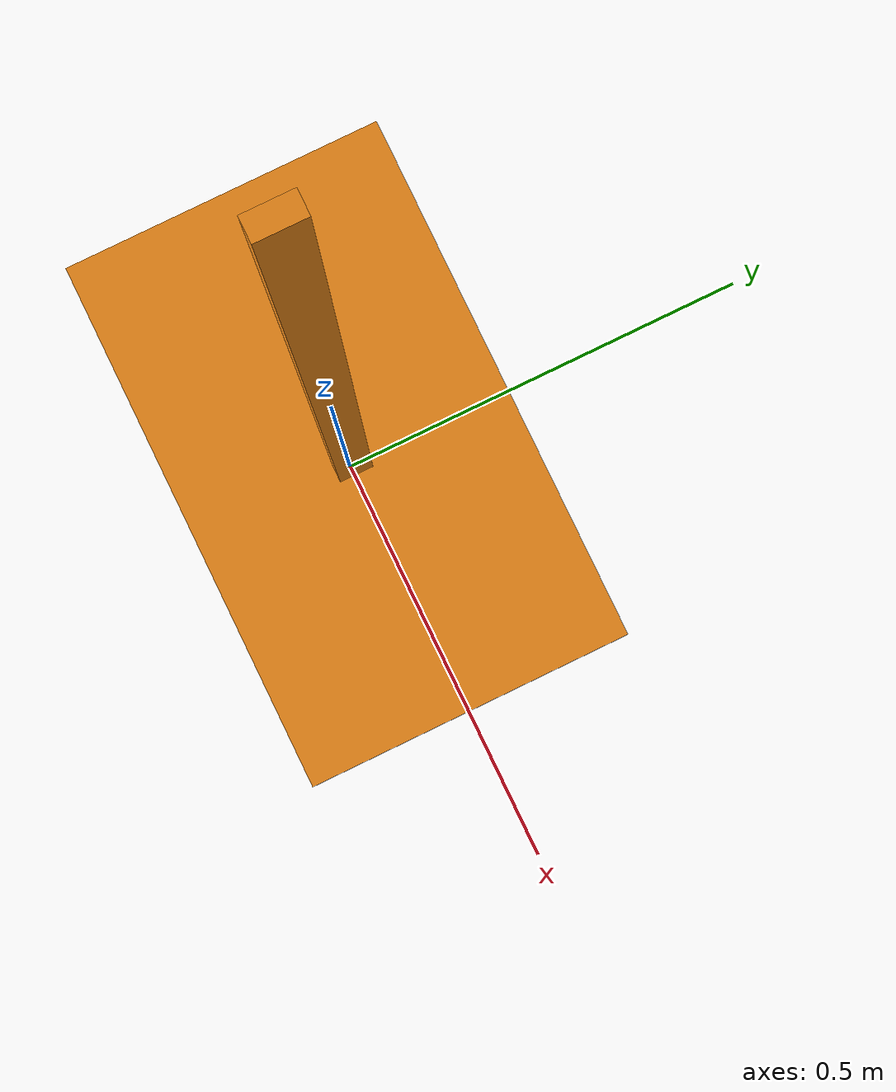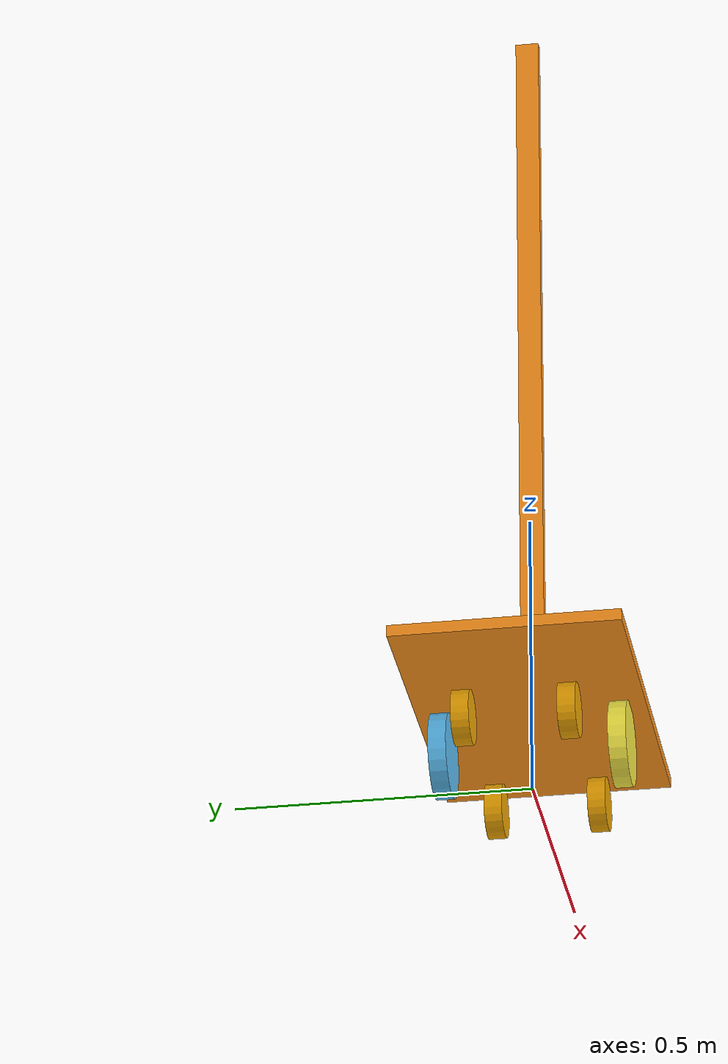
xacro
<?xml version="1.0"?>
<!-- Revolute-Revolute Manipulator -->
<robot name="interaction_robot" xmlns:xacro="http://www.ros.org/wiki/xacro">
  <!-- Constants for robot dimensions -->
  <xacro:property name="PI" value="3.1415926535897931"/>

  <!-- Import Rviz colors -->
  <xacro:include filename="$(find icart_mini_description)/urdf/materials.xacro" />
  <xacro:include filename="$(find orne_description)/urdf/interaction_robot.gazebo"/>

  <!-- Base Link -->
  <link name="base_link">
    <collision>
      <origin xyz="0 0 0.15" rpy="0 0 0"/>
      <geometry>
	<box size=".645 .385 .02"/>
      </geometry>
    </collision>

    <visual>
      <origin xyz="0 0 0.15" rpy="0 0 0"/>
      <geometry>
	<box size=".64 .385 .02"/>
      </geometry>
      <material name="orange"/>
    </visual>

    <collision>
      <origin xyz="0.02 0 0.81" rpy="0 0 0"/>
      <geometry>
  <box size=".020 .040 1.30"/>
      </geometry>
    </collision>

    <visual>
      <origin xyz="0.02 0 0.81" rpy="0 0 0"/>
      <geometry>
  <box size=".020 .040 1.30"/>
      </geometry>
      <material name="orange"/>
    </visual>

    <collision name="collision">
      <origin xyz="-0.185 -0.0875 0.05" rpy="0 1.5707 1.5707"/>
      <geometry>
        <cylinder  length="0.03" radius="0.04625"/>
      </geometry>
    </collision>
    <visual name="visual">
      <origin xyz="-0.185 -0.0875 0.05" rpy="0 1.5707 1.5707"/>
      <geometry>
        <cylinder  length="0.03" radius="0.04625"/>
      </geometry>
    </visual>

    <collision name="collision">
      <origin xyz="-0.185 0.0875 0.05" rpy="0 1.5707 1.5707"/>
      <geometry>
        <cylinder  length="0.03" radius="0.04625"/>
      </geometry>
    </collision>
    <visual name="visual">
      <origin xyz="-0.185 0.0875 0.05" rpy="0 1.5707 1.5707"/>
      <geometry>
        <cylinder  length="0.03" radius="0.04625"/>
      </geometry>
    </visual>

    <collision name="collision">
      <origin xyz="0.18 -0.0875 0.05" rpy="0 1.5707 1.5707"/>
      <geometry>
        <cylinder  length="0.03" radius="0.04625"/>
      </geometry>
    </collision>
    <visual name="visual">
      <origin xyz="0.18 -0.0875 0.05" rpy="0 1.5707 1.5707"/>
      <geometry>
        <cylinder  length="0.03" radius="0.04625"/>
      </geometry>
    </visual>

    <collision name="collision">
      <origin xyz="0.18 0.0875 0.05" rpy="0 1.5707 1.5707"/>
      <geometry>
        <cylinder  length="0.03" radius="0.04625"/>
      </geometry>
    </collision>
    <visual name="visual">
      <origin xyz="0.18 0.0875 0.05" rpy="0 1.5707 1.5707"/>
      <geometry>
        <cylinder  length="0.03" radius="0.04625"/>
      </geometry>
    </visual>

    <inertial>
       <mass value="20" />
       <origin xyz="0 0 0" rpy="0 0 0"/>
       <inertia ixx="1" ixy="0" ixz="0" iyy="1" iyz="0" izz="1" />
    </inertial>
  </link>

  <link name="visual_left_wheel">
    <visual name="visual">
      <origin xyz="0 0 0" rpy="0 1.5707 1.5707"/>
      <geometry>
        <cylinder  length="0.03" radius="0.0725"/>
      </geometry>
    </visual>
  </link>

  <joint type="fixed" name="visual_left_wheel_hinge">
    <origin xyz="0 0.15 0.0725" rpy="0 0 0"/>
    <child link="visual_left_wheel">visual_left_wheel</child>
    <parent link="base_link">base_link</parent>
    <axis xyz="0 1 0"/>
  </joint>

  <link name="left_wheel">
    <collision name="collision">
      <origin xyz="0 -0 0" rpy="0 1.5707 1.5707"/>
      <geometry>
         <cylinder  length="0.03" radius="0.0725"/>
      </geometry>
    </collision>
    <inertial>
      <mass value="1" />
      <origin xyz="0 0.0 0"/>
      <inertia ixx="0.1" ixy="0" ixz="0" iyy="0.1" iyz="0" izz="0.1" />
    </inertial>
  </link>

  <joint type="revolute" name="left_wheel_hinge">
    <origin xyz="0 0.15 0.07258" rpy="0 0 0"/>
    <child link="left_wheel">left_wheel</child>
    <parent link="base_link">base_link</parent>
    <axis xyz="0 1 0"/>
    <limit effort="100" velocity="100.0"  lower="-5000" upper="5000" />
  </joint>

  <link name="visual_right_wheel">
    <visual name="visual">
      <origin xyz="0 -0 0" rpy="0 1.5707 1.5707"/>
      <geometry>
        <cylinder  length="0.03" radius="0.0725"/>
      </geometry>
    </visual>
  </link>

  <joint type="fixed" name="visual_right_wheel_hinge">
    <origin xyz="0 -0.15 0.0725" rpy="0 0 0"/>
    <child link="visual_right_wheel">visual_right_wheel</child>
    <parent link="base_link">base_link</parent>
    <axis xyz="0 1 0"/>
  </joint>

  <link name="right_wheel">
    <collision name="collision">
      <origin xyz="0 -0 0" rpy="0 1.5707 1.5707"/>
      <geometry>
         <cylinder  length="0.03" radius="0.0725"/>
      </geometry>
    </collision>
    <inertial>
      <mass value="1" />
      <origin xyz="0 0.0 0"/>
      <inertia ixx="0.1" ixy="0" ixz="0" iyy="0.1" iyz="0" izz="0.1" />
    </inertial>
  </link>

  <joint type="revolute" name="right_wheel_hinge">
    <origin xyz="0 -0.15 0.0725" rpy="0 0 0"/>
    <child link="right_wheel">right_wheel</child>
    <parent link="base_link">base_link</parent>
    <axis xyz="0 1 0"/>
    <limit effort="100" velocity="100.0"  lower="-5000" upper="5000" />
  </joint>

  <transmission name="tran1">
    <type>transmission_interface/SimpleTransmission</type>
    <joint name="left_wheel_hinge">
      <hardwareInterface>VelocityJointInterface</hardwareInterface>
    </joint>
  <actuator name="left_motor">
      <hardwareInterface>VelocityJointInterface</hardwareInterface>
      <mechanicalReduction>1</mechanicalReduction>
    </actuator>
  </transmission>

  <transmission name="tran2">
    <type>transmission_interface/SimpleTransmission</type>
    <joint name="right_wheel_hinge">
      <hardwareInterface>VelocityJointInterface</hardwareInterface>
    </joint>
  <actuator name="right_motor">
      <hardwareInterface>VelocityJointInterface</hardwareInterface>
      <mechanicalReduction>1</mechanicalReduction>
    </actuator>
  </transmission>

</robot>
